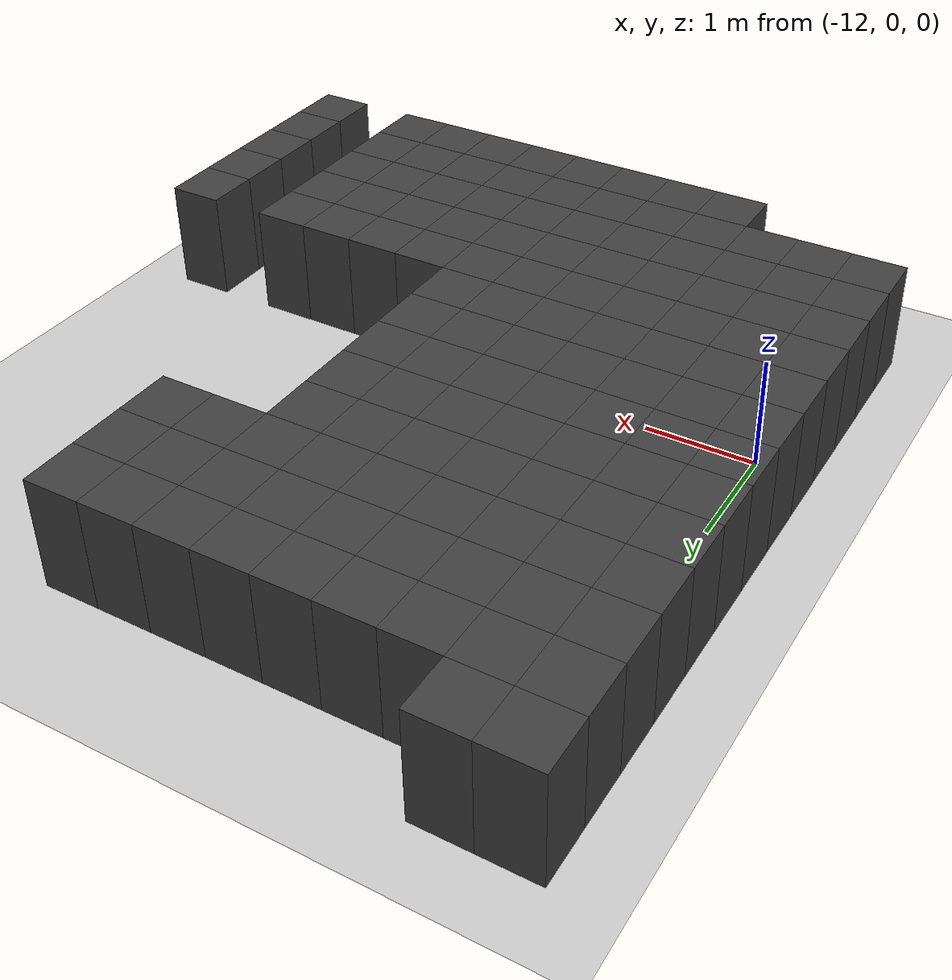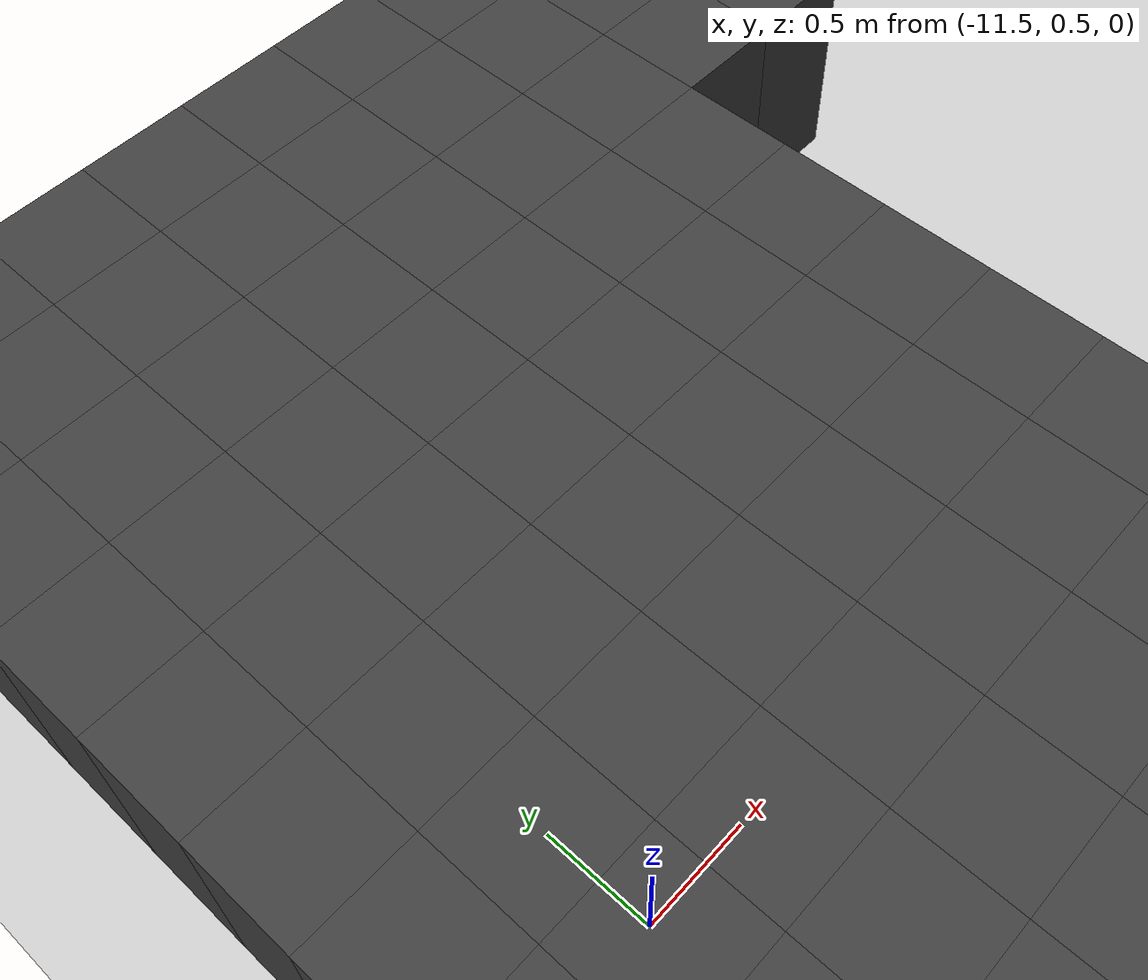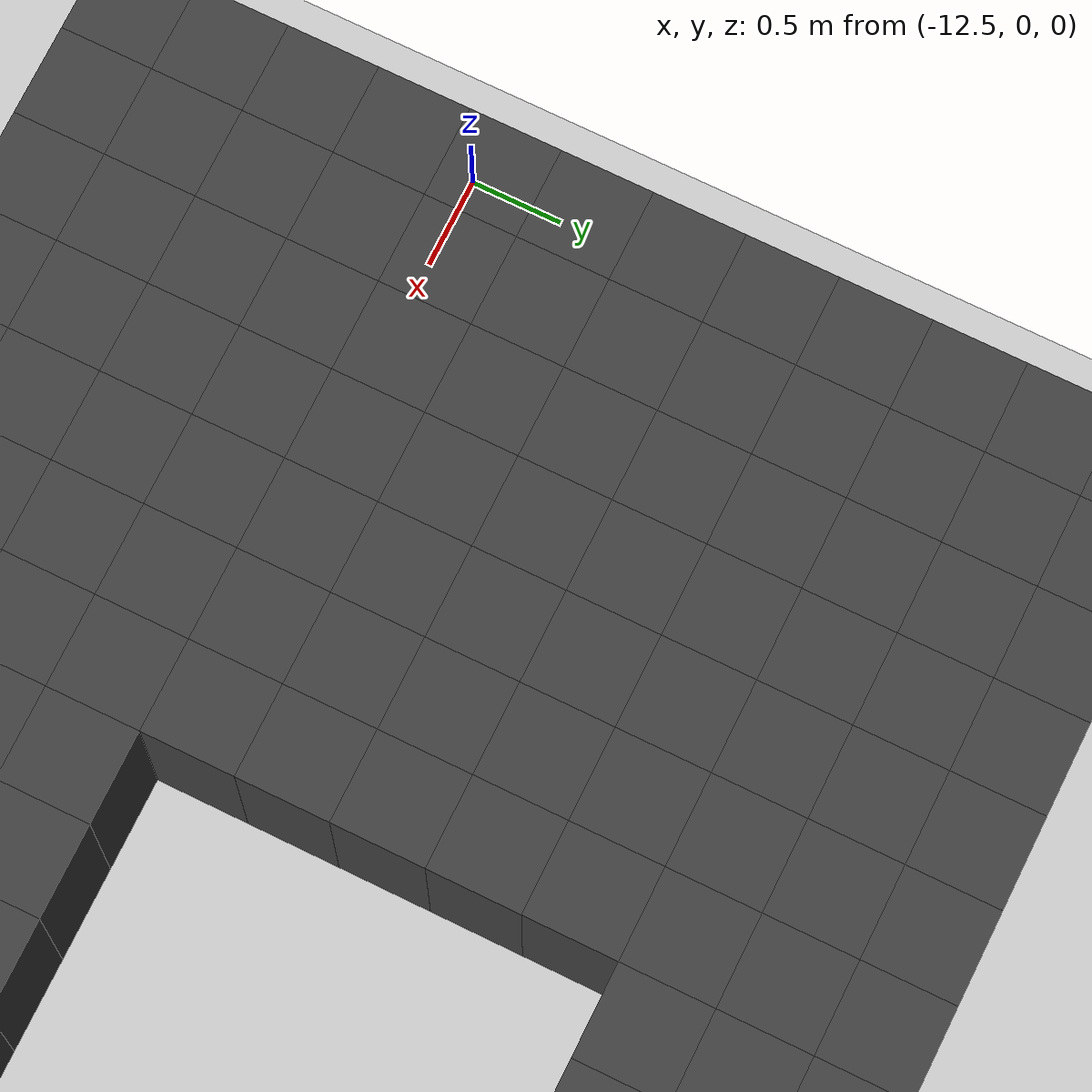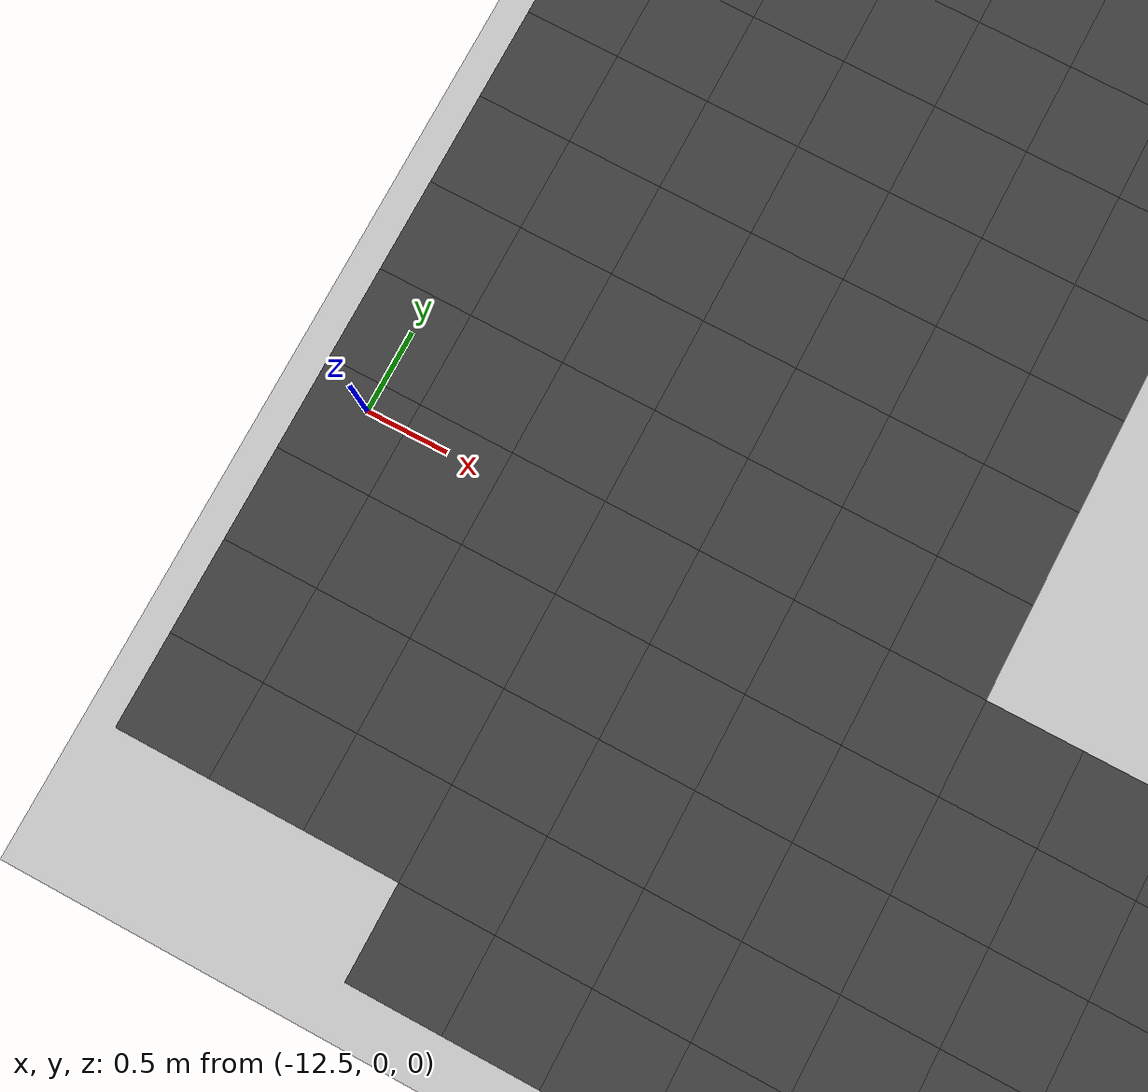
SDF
<sdf version="1.7">
 <world name="map_14706">
  <model name="ground_plane">
   <static>true</static>
   <link name="link">
    <collision name="collision">
     <geometry><plane><normal>0 0 1</normal><size>200 200</size></plane></geometry>
    </collision>
    <visual name="visual">
     <geometry><plane><normal>0 0 1</normal><size>200 200</size></plane></geometry>
     <material><ambient>0.8 0.8 0.8 1</ambient><diffuse>0.8 0.8 0.8 1</diffuse></material>
    </visual>
   </link>
  </model>
  <model name="maze_environment">
   <static>true</static>
   <link name="wall_499">
    <pose>-12.250 4.250 0.500 0 0 0</pose>
    <collision name="col"><geometry><box><size>0.5 0.5 1.0</size></box></geometry></collision>
    <visual name="vis">
     <geometry><box><size>0.5 0.5 1.0</size></box></geometry>
     <material><ambient>0.15 0.15 0.15 1</ambient><diffuse>0.25 0.25 0.25 1</diffuse></material>
    </visual>
   </link>
   <link name="wall_500">
    <pose>-11.750 4.250 0.500 0 0 0</pose>
    <collision name="col"><geometry><box><size>0.5 0.5 1.0</size></box></geometry></collision>
    <visual name="vis">
     <geometry><box><size>0.5 0.5 1.0</size></box></geometry>
     <material><ambient>0.15 0.15 0.15 1</ambient><diffuse>0.25 0.25 0.25 1</diffuse></material>
    </visual>
   </link>
   <link name="wall_538">
    <pose>-12.250 3.750 0.500 0 0 0</pose>
    <collision name="col"><geometry><box><size>0.5 0.5 1.0</size></box></geometry></collision>
    <visual name="vis">
     <geometry><box><size>0.5 0.5 1.0</size></box></geometry>
     <material><ambient>0.15 0.15 0.15 1</ambient><diffuse>0.25 0.25 0.25 1</diffuse></material>
    </visual>
   </link>
   <link name="wall_539">
    <pose>-11.750 3.750 0.500 0 0 0</pose>
    <collision name="col"><geometry><box><size>0.5 0.5 1.0</size></box></geometry></collision>
    <visual name="vis">
     <geometry><box><size>0.5 0.5 1.0</size></box></geometry>
     <material><ambient>0.15 0.15 0.15 1</ambient><diffuse>0.25 0.25 0.25 1</diffuse></material>
    </visual>
   </link>
   <link name="wall_540">
    <pose>-11.250 3.750 0.500 0 0 0</pose>
    <collision name="col"><geometry><box><size>0.5 0.5 1.0</size></box></geometry></collision>
    <visual name="vis">
     <geometry><box><size>0.5 0.5 1.0</size></box></geometry>
     <material><ambient>0.15 0.15 0.15 1</ambient><diffuse>0.25 0.25 0.25 1</diffuse></material>
    </visual>
   </link>
   <link name="wall_541">
    <pose>-10.750 3.750 0.500 0 0 0</pose>
    <collision name="col"><geometry><box><size>0.5 0.5 1.0</size></box></geometry></collision>
    <visual name="vis">
     <geometry><box><size>0.5 0.5 1.0</size></box></geometry>
     <material><ambient>0.15 0.15 0.15 1</ambient><diffuse>0.25 0.25 0.25 1</diffuse></material>
    </visual>
   </link>
   <link name="wall_542">
    <pose>-10.250 3.750 0.500 0 0 0</pose>
    <collision name="col"><geometry><box><size>0.5 0.5 1.0</size></box></geometry></collision>
    <visual name="vis">
     <geometry><box><size>0.5 0.5 1.0</size></box></geometry>
     <material><ambient>0.15 0.15 0.15 1</ambient><diffuse>0.25 0.25 0.25 1</diffuse></material>
    </visual>
   </link>
   <link name="wall_543">
    <pose>-9.750 3.750 0.500 0 0 0</pose>
    <collision name="col"><geometry><box><size>0.5 0.5 1.0</size></box></geometry></collision>
    <visual name="vis">
     <geometry><box><size>0.5 0.5 1.0</size></box></geometry>
     <material><ambient>0.15 0.15 0.15 1</ambient><diffuse>0.25 0.25 0.25 1</diffuse></material>
    </visual>
   </link>
   <link name="wall_544">
    <pose>-9.250 3.750 0.500 0 0 0</pose>
    <collision name="col"><geometry><box><size>0.5 0.5 1.0</size></box></geometry></collision>
    <visual name="vis">
     <geometry><box><size>0.5 0.5 1.0</size></box></geometry>
     <material><ambient>0.15 0.15 0.15 1</ambient><diffuse>0.25 0.25 0.25 1</diffuse></material>
    </visual>
   </link>
   <link name="wall_545">
    <pose>-8.750 3.750 0.500 0 0 0</pose>
    <collision name="col"><geometry><box><size>0.5 0.5 1.0</size></box></geometry></collision>
    <visual name="vis">
     <geometry><box><size>0.5 0.5 1.0</size></box></geometry>
     <material><ambient>0.15 0.15 0.15 1</ambient><diffuse>0.25 0.25 0.25 1</diffuse></material>
    </visual>
   </link>
   <link name="wall_546">
    <pose>-8.250 3.750 0.500 0 0 0</pose>
    <collision name="col"><geometry><box><size>0.5 0.5 1.0</size></box></geometry></collision>
    <visual name="vis">
     <geometry><box><size>0.5 0.5 1.0</size></box></geometry>
     <material><ambient>0.15 0.15 0.15 1</ambient><diffuse>0.25 0.25 0.25 1</diffuse></material>
    </visual>
   </link>
   <link name="wall_568">
    <pose>-12.250 3.250 0.500 0 0 0</pose>
    <collision name="col"><geometry><box><size>0.5 0.5 1.0</size></box></geometry></collision>
    <visual name="vis">
     <geometry><box><size>0.5 0.5 1.0</size></box></geometry>
     <material><ambient>0.15 0.15 0.15 1</ambient><diffuse>0.25 0.25 0.25 1</diffuse></material>
    </visual>
   </link>
   <link name="wall_569">
    <pose>-11.750 3.250 0.500 0 0 0</pose>
    <collision name="col"><geometry><box><size>0.5 0.5 1.0</size></box></geometry></collision>
    <visual name="vis">
     <geometry><box><size>0.5 0.5 1.0</size></box></geometry>
     <material><ambient>0.15 0.15 0.15 1</ambient><diffuse>0.25 0.25 0.25 1</diffuse></material>
    </visual>
   </link>
   <link name="wall_570">
    <pose>-11.250 3.250 0.500 0 0 0</pose>
    <collision name="col"><geometry><box><size>0.5 0.5 1.0</size></box></geometry></collision>
    <visual name="vis">
     <geometry><box><size>0.5 0.5 1.0</size></box></geometry>
     <material><ambient>0.15 0.15 0.15 1</ambient><diffuse>0.25 0.25 0.25 1</diffuse></material>
    </visual>
   </link>
   <link name="wall_571">
    <pose>-10.750 3.250 0.500 0 0 0</pose>
    <collision name="col"><geometry><box><size>0.5 0.5 1.0</size></box></geometry></collision>
    <visual name="vis">
     <geometry><box><size>0.5 0.5 1.0</size></box></geometry>
     <material><ambient>0.15 0.15 0.15 1</ambient><diffuse>0.25 0.25 0.25 1</diffuse></material>
    </visual>
   </link>
   <link name="wall_572">
    <pose>-10.250 3.250 0.500 0 0 0</pose>
    <collision name="col"><geometry><box><size>0.5 0.5 1.0</size></box></geometry></collision>
    <visual name="vis">
     <geometry><box><size>0.5 0.5 1.0</size></box></geometry>
     <material><ambient>0.15 0.15 0.15 1</ambient><diffuse>0.25 0.25 0.25 1</diffuse></material>
    </visual>
   </link>
   <link name="wall_573">
    <pose>-9.750 3.250 0.500 0 0 0</pose>
    <collision name="col"><geometry><box><size>0.5 0.5 1.0</size></box></geometry></collision>
    <visual name="vis">
     <geometry><box><size>0.5 0.5 1.0</size></box></geometry>
     <material><ambient>0.15 0.15 0.15 1</ambient><diffuse>0.25 0.25 0.25 1</diffuse></material>
    </visual>
   </link>
   <link name="wall_574">
    <pose>-9.250 3.250 0.500 0 0 0</pose>
    <collision name="col"><geometry><box><size>0.5 0.5 1.0</size></box></geometry></collision>
    <visual name="vis">
     <geometry><box><size>0.5 0.5 1.0</size></box></geometry>
     <material><ambient>0.15 0.15 0.15 1</ambient><diffuse>0.25 0.25 0.25 1</diffuse></material>
    </visual>
   </link>
   <link name="wall_575">
    <pose>-8.750 3.250 0.500 0 0 0</pose>
    <collision name="col"><geometry><box><size>0.5 0.5 1.0</size></box></geometry></collision>
    <visual name="vis">
     <geometry><box><size>0.5 0.5 1.0</size></box></geometry>
     <material><ambient>0.15 0.15 0.15 1</ambient><diffuse>0.25 0.25 0.25 1</diffuse></material>
    </visual>
   </link>
   <link name="wall_576">
    <pose>-8.250 3.250 0.500 0 0 0</pose>
    <collision name="col"><geometry><box><size>0.5 0.5 1.0</size></box></geometry></collision>
    <visual name="vis">
     <geometry><box><size>0.5 0.5 1.0</size></box></geometry>
     <material><ambient>0.15 0.15 0.15 1</ambient><diffuse>0.25 0.25 0.25 1</diffuse></material>
    </visual>
   </link>
   <link name="wall_600">
    <pose>-12.250 2.750 0.500 0 0 0</pose>
    <collision name="col"><geometry><box><size>0.5 0.5 1.0</size></box></geometry></collision>
    <visual name="vis">
     <geometry><box><size>0.5 0.5 1.0</size></box></geometry>
     <material><ambient>0.15 0.15 0.15 1</ambient><diffuse>0.25 0.25 0.25 1</diffuse></material>
    </visual>
   </link>
   <link name="wall_601">
    <pose>-11.750 2.750 0.500 0 0 0</pose>
    <collision name="col"><geometry><box><size>0.5 0.5 1.0</size></box></geometry></collision>
    <visual name="vis">
     <geometry><box><size>0.5 0.5 1.0</size></box></geometry>
     <material><ambient>0.15 0.15 0.15 1</ambient><diffuse>0.25 0.25 0.25 1</diffuse></material>
    </visual>
   </link>
   <link name="wall_602">
    <pose>-11.250 2.750 0.500 0 0 0</pose>
    <collision name="col"><geometry><box><size>0.5 0.5 1.0</size></box></geometry></collision>
    <visual name="vis">
     <geometry><box><size>0.5 0.5 1.0</size></box></geometry>
     <material><ambient>0.15 0.15 0.15 1</ambient><diffuse>0.25 0.25 0.25 1</diffuse></material>
    </visual>
   </link>
   <link name="wall_603">
    <pose>-10.750 2.750 0.500 0 0 0</pose>
    <collision name="col"><geometry><box><size>0.5 0.5 1.0</size></box></geometry></collision>
    <visual name="vis">
     <geometry><box><size>0.5 0.5 1.0</size></box></geometry>
     <material><ambient>0.15 0.15 0.15 1</ambient><diffuse>0.25 0.25 0.25 1</diffuse></material>
    </visual>
   </link>
   <link name="wall_604">
    <pose>-10.250 2.750 0.500 0 0 0</pose>
    <collision name="col"><geometry><box><size>0.5 0.5 1.0</size></box></geometry></collision>
    <visual name="vis">
     <geometry><box><size>0.5 0.5 1.0</size></box></geometry>
     <material><ambient>0.15 0.15 0.15 1</ambient><diffuse>0.25 0.25 0.25 1</diffuse></material>
    </visual>
   </link>
   <link name="wall_605">
    <pose>-9.750 2.750 0.500 0 0 0</pose>
    <collision name="col"><geometry><box><size>0.5 0.5 1.0</size></box></geometry></collision>
    <visual name="vis">
     <geometry><box><size>0.5 0.5 1.0</size></box></geometry>
     <material><ambient>0.15 0.15 0.15 1</ambient><diffuse>0.25 0.25 0.25 1</diffuse></material>
    </visual>
   </link>
   <link name="wall_606">
    <pose>-9.250 2.750 0.500 0 0 0</pose>
    <collision name="col"><geometry><box><size>0.5 0.5 1.0</size></box></geometry></collision>
    <visual name="vis">
     <geometry><box><size>0.5 0.5 1.0</size></box></geometry>
     <material><ambient>0.15 0.15 0.15 1</ambient><diffuse>0.25 0.25 0.25 1</diffuse></material>
    </visual>
   </link>
   <link name="wall_607">
    <pose>-8.750 2.750 0.500 0 0 0</pose>
    <collision name="col"><geometry><box><size>0.5 0.5 1.0</size></box></geometry></collision>
    <visual name="vis">
     <geometry><box><size>0.5 0.5 1.0</size></box></geometry>
     <material><ambient>0.15 0.15 0.15 1</ambient><diffuse>0.25 0.25 0.25 1</diffuse></material>
    </visual>
   </link>
   <link name="wall_608">
    <pose>-8.250 2.750 0.500 0 0 0</pose>
    <collision name="col"><geometry><box><size>0.5 0.5 1.0</size></box></geometry></collision>
    <visual name="vis">
     <geometry><box><size>0.5 0.5 1.0</size></box></geometry>
     <material><ambient>0.15 0.15 0.15 1</ambient><diffuse>0.25 0.25 0.25 1</diffuse></material>
    </visual>
   </link>
   <link name="wall_631">
    <pose>-12.250 2.250 0.500 0 0 0</pose>
    <collision name="col"><geometry><box><size>0.5 0.5 1.0</size></box></geometry></collision>
    <visual name="vis">
     <geometry><box><size>0.5 0.5 1.0</size></box></geometry>
     <material><ambient>0.15 0.15 0.15 1</ambient><diffuse>0.25 0.25 0.25 1</diffuse></material>
    </visual>
   </link>
   <link name="wall_632">
    <pose>-11.750 2.250 0.500 0 0 0</pose>
    <collision name="col"><geometry><box><size>0.5 0.5 1.0</size></box></geometry></collision>
    <visual name="vis">
     <geometry><box><size>0.5 0.5 1.0</size></box></geometry>
     <material><ambient>0.15 0.15 0.15 1</ambient><diffuse>0.25 0.25 0.25 1</diffuse></material>
    </visual>
   </link>
   <link name="wall_633">
    <pose>-11.250 2.250 0.500 0 0 0</pose>
    <collision name="col"><geometry><box><size>0.5 0.5 1.0</size></box></geometry></collision>
    <visual name="vis">
     <geometry><box><size>0.5 0.5 1.0</size></box></geometry>
     <material><ambient>0.15 0.15 0.15 1</ambient><diffuse>0.25 0.25 0.25 1</diffuse></material>
    </visual>
   </link>
   <link name="wall_634">
    <pose>-10.750 2.250 0.500 0 0 0</pose>
    <collision name="col"><geometry><box><size>0.5 0.5 1.0</size></box></geometry></collision>
    <visual name="vis">
     <geometry><box><size>0.5 0.5 1.0</size></box></geometry>
     <material><ambient>0.15 0.15 0.15 1</ambient><diffuse>0.25 0.25 0.25 1</diffuse></material>
    </visual>
   </link>
   <link name="wall_635">
    <pose>-10.250 2.250 0.500 0 0 0</pose>
    <collision name="col"><geometry><box><size>0.5 0.5 1.0</size></box></geometry></collision>
    <visual name="vis">
     <geometry><box><size>0.5 0.5 1.0</size></box></geometry>
     <material><ambient>0.15 0.15 0.15 1</ambient><diffuse>0.25 0.25 0.25 1</diffuse></material>
    </visual>
   </link>
   <link name="wall_636">
    <pose>-9.750 2.250 0.500 0 0 0</pose>
    <collision name="col"><geometry><box><size>0.5 0.5 1.0</size></box></geometry></collision>
    <visual name="vis">
     <geometry><box><size>0.5 0.5 1.0</size></box></geometry>
     <material><ambient>0.15 0.15 0.15 1</ambient><diffuse>0.25 0.25 0.25 1</diffuse></material>
    </visual>
   </link>
   <link name="wall_637">
    <pose>-9.250 2.250 0.500 0 0 0</pose>
    <collision name="col"><geometry><box><size>0.5 0.5 1.0</size></box></geometry></collision>
    <visual name="vis">
     <geometry><box><size>0.5 0.5 1.0</size></box></geometry>
     <material><ambient>0.15 0.15 0.15 1</ambient><diffuse>0.25 0.25 0.25 1</diffuse></material>
    </visual>
   </link>
   <link name="wall_662">
    <pose>-12.250 1.750 0.500 0 0 0</pose>
    <collision name="col"><geometry><box><size>0.5 0.5 1.0</size></box></geometry></collision>
    <visual name="vis">
     <geometry><box><size>0.5 0.5 1.0</size></box></geometry>
     <material><ambient>0.15 0.15 0.15 1</ambient><diffuse>0.25 0.25 0.25 1</diffuse></material>
    </visual>
   </link>
   <link name="wall_663">
    <pose>-11.750 1.750 0.500 0 0 0</pose>
    <collision name="col"><geometry><box><size>0.5 0.5 1.0</size></box></geometry></collision>
    <visual name="vis">
     <geometry><box><size>0.5 0.5 1.0</size></box></geometry>
     <material><ambient>0.15 0.15 0.15 1</ambient><diffuse>0.25 0.25 0.25 1</diffuse></material>
    </visual>
   </link>
   <link name="wall_664">
    <pose>-11.250 1.750 0.500 0 0 0</pose>
    <collision name="col"><geometry><box><size>0.5 0.5 1.0</size></box></geometry></collision>
    <visual name="vis">
     <geometry><box><size>0.5 0.5 1.0</size></box></geometry>
     <material><ambient>0.15 0.15 0.15 1</ambient><diffuse>0.25 0.25 0.25 1</diffuse></material>
    </visual>
   </link>
   <link name="wall_665">
    <pose>-10.750 1.750 0.500 0 0 0</pose>
    <collision name="col"><geometry><box><size>0.5 0.5 1.0</size></box></geometry></collision>
    <visual name="vis">
     <geometry><box><size>0.5 0.5 1.0</size></box></geometry>
     <material><ambient>0.15 0.15 0.15 1</ambient><diffuse>0.25 0.25 0.25 1</diffuse></material>
    </visual>
   </link>
   <link name="wall_666">
    <pose>-10.250 1.750 0.500 0 0 0</pose>
    <collision name="col"><geometry><box><size>0.5 0.5 1.0</size></box></geometry></collision>
    <visual name="vis">
     <geometry><box><size>0.5 0.5 1.0</size></box></geometry>
     <material><ambient>0.15 0.15 0.15 1</ambient><diffuse>0.25 0.25 0.25 1</diffuse></material>
    </visual>
   </link>
   <link name="wall_667">
    <pose>-9.750 1.750 0.500 0 0 0</pose>
    <collision name="col"><geometry><box><size>0.5 0.5 1.0</size></box></geometry></collision>
    <visual name="vis">
     <geometry><box><size>0.5 0.5 1.0</size></box></geometry>
     <material><ambient>0.15 0.15 0.15 1</ambient><diffuse>0.25 0.25 0.25 1</diffuse></material>
    </visual>
   </link>
   <link name="wall_668">
    <pose>-9.250 1.750 0.500 0 0 0</pose>
    <collision name="col"><geometry><box><size>0.5 0.5 1.0</size></box></geometry></collision>
    <visual name="vis">
     <geometry><box><size>0.5 0.5 1.0</size></box></geometry>
     <material><ambient>0.15 0.15 0.15 1</ambient><diffuse>0.25 0.25 0.25 1</diffuse></material>
    </visual>
   </link>
   <link name="wall_698">
    <pose>-12.250 1.250 0.500 0 0 0</pose>
    <collision name="col"><geometry><box><size>0.5 0.5 1.0</size></box></geometry></collision>
    <visual name="vis">
     <geometry><box><size>0.5 0.5 1.0</size></box></geometry>
     <material><ambient>0.15 0.15 0.15 1</ambient><diffuse>0.25 0.25 0.25 1</diffuse></material>
    </visual>
   </link>
   <link name="wall_699">
    <pose>-11.750 1.250 0.500 0 0 0</pose>
    <collision name="col"><geometry><box><size>0.5 0.5 1.0</size></box></geometry></collision>
    <visual name="vis">
     <geometry><box><size>0.5 0.5 1.0</size></box></geometry>
     <material><ambient>0.15 0.15 0.15 1</ambient><diffuse>0.25 0.25 0.25 1</diffuse></material>
    </visual>
   </link>
   <link name="wall_700">
    <pose>-11.250 1.250 0.500 0 0 0</pose>
    <collision name="col"><geometry><box><size>0.5 0.5 1.0</size></box></geometry></collision>
    <visual name="vis">
     <geometry><box><size>0.5 0.5 1.0</size></box></geometry>
     <material><ambient>0.15 0.15 0.15 1</ambient><diffuse>0.25 0.25 0.25 1</diffuse></material>
    </visual>
   </link>
   <link name="wall_701">
    <pose>-10.750 1.250 0.500 0 0 0</pose>
    <collision name="col"><geometry><box><size>0.5 0.5 1.0</size></box></geometry></collision>
    <visual name="vis">
     <geometry><box><size>0.5 0.5 1.0</size></box></geometry>
     <material><ambient>0.15 0.15 0.15 1</ambient><diffuse>0.25 0.25 0.25 1</diffuse></material>
    </visual>
   </link>
   <link name="wall_702">
    <pose>-10.250 1.250 0.500 0 0 0</pose>
    <collision name="col"><geometry><box><size>0.5 0.5 1.0</size></box></geometry></collision>
    <visual name="vis">
     <geometry><box><size>0.5 0.5 1.0</size></box></geometry>
     <material><ambient>0.15 0.15 0.15 1</ambient><diffuse>0.25 0.25 0.25 1</diffuse></material>
    </visual>
   </link>
   <link name="wall_703">
    <pose>-9.750 1.250 0.500 0 0 0</pose>
    <collision name="col"><geometry><box><size>0.5 0.5 1.0</size></box></geometry></collision>
    <visual name="vis">
     <geometry><box><size>0.5 0.5 1.0</size></box></geometry>
     <material><ambient>0.15 0.15 0.15 1</ambient><diffuse>0.25 0.25 0.25 1</diffuse></material>
    </visual>
   </link>
   <link name="wall_704">
    <pose>-9.250 1.250 0.500 0 0 0</pose>
    <collision name="col"><geometry><box><size>0.5 0.5 1.0</size></box></geometry></collision>
    <visual name="vis">
     <geometry><box><size>0.5 0.5 1.0</size></box></geometry>
     <material><ambient>0.15 0.15 0.15 1</ambient><diffuse>0.25 0.25 0.25 1</diffuse></material>
    </visual>
   </link>
   <link name="wall_739">
    <pose>-12.250 0.750 0.500 0 0 0</pose>
    <collision name="col"><geometry><box><size>0.5 0.5 1.0</size></box></geometry></collision>
    <visual name="vis">
     <geometry><box><size>0.5 0.5 1.0</size></box></geometry>
     <material><ambient>0.15 0.15 0.15 1</ambient><diffuse>0.25 0.25 0.25 1</diffuse></material>
    </visual>
   </link>
   <link name="wall_740">
    <pose>-11.750 0.750 0.500 0 0 0</pose>
    <collision name="col"><geometry><box><size>0.5 0.5 1.0</size></box></geometry></collision>
    <visual name="vis">
     <geometry><box><size>0.5 0.5 1.0</size></box></geometry>
     <material><ambient>0.15 0.15 0.15 1</ambient><diffuse>0.25 0.25 0.25 1</diffuse></material>
    </visual>
   </link>
   <link name="wall_741">
    <pose>-11.250 0.750 0.500 0 0 0</pose>
    <collision name="col"><geometry><box><size>0.5 0.5 1.0</size></box></geometry></collision>
    <visual name="vis">
     <geometry><box><size>0.5 0.5 1.0</size></box></geometry>
     <material><ambient>0.15 0.15 0.15 1</ambient><diffuse>0.25 0.25 0.25 1</diffuse></material>
    </visual>
   </link>
   <link name="wall_742">
    <pose>-10.750 0.750 0.500 0 0 0</pose>
    <collision name="col"><geometry><box><size>0.5 0.5 1.0</size></box></geometry></collision>
    <visual name="vis">
     <geometry><box><size>0.5 0.5 1.0</size></box></geometry>
     <material><ambient>0.15 0.15 0.15 1</ambient><diffuse>0.25 0.25 0.25 1</diffuse></material>
    </visual>
   </link>
   <link name="wall_743">
    <pose>-10.250 0.750 0.500 0 0 0</pose>
    <collision name="col"><geometry><box><size>0.5 0.5 1.0</size></box></geometry></collision>
    <visual name="vis">
     <geometry><box><size>0.5 0.5 1.0</size></box></geometry>
     <material><ambient>0.15 0.15 0.15 1</ambient><diffuse>0.25 0.25 0.25 1</diffuse></material>
    </visual>
   </link>
   <link name="wall_744">
    <pose>-9.750 0.750 0.500 0 0 0</pose>
    <collision name="col"><geometry><box><size>0.5 0.5 1.0</size></box></geometry></collision>
    <visual name="vis">
     <geometry><box><size>0.5 0.5 1.0</size></box></geometry>
     <material><ambient>0.15 0.15 0.15 1</ambient><diffuse>0.25 0.25 0.25 1</diffuse></material>
    </visual>
   </link>
   <link name="wall_745">
    <pose>-9.250 0.750 0.500 0 0 0</pose>
    <collision name="col"><geometry><box><size>0.5 0.5 1.0</size></box></geometry></collision>
    <visual name="vis">
     <geometry><box><size>0.5 0.5 1.0</size></box></geometry>
     <material><ambient>0.15 0.15 0.15 1</ambient><diffuse>0.25 0.25 0.25 1</diffuse></material>
    </visual>
   </link>
   <link name="wall_780">
    <pose>-12.250 0.250 0.500 0 0 0</pose>
    <collision name="col"><geometry><box><size>0.5 0.5 1.0</size></box></geometry></collision>
    <visual name="vis">
     <geometry><box><size>0.5 0.5 1.0</size></box></geometry>
     <material><ambient>0.15 0.15 0.15 1</ambient><diffuse>0.25 0.25 0.25 1</diffuse></material>
    </visual>
   </link>
   <link name="wall_781">
    <pose>-11.750 0.250 0.500 0 0 0</pose>
    <collision name="col"><geometry><box><size>0.5 0.5 1.0</size></box></geometry></collision>
    <visual name="vis">
     <geometry><box><size>0.5 0.5 1.0</size></box></geometry>
     <material><ambient>0.15 0.15 0.15 1</ambient><diffuse>0.25 0.25 0.25 1</diffuse></material>
    </visual>
   </link>
   <link name="wall_782">
    <pose>-11.250 0.250 0.500 0 0 0</pose>
    <collision name="col"><geometry><box><size>0.5 0.5 1.0</size></box></geometry></collision>
    <visual name="vis">
     <geometry><box><size>0.5 0.5 1.0</size></box></geometry>
     <material><ambient>0.15 0.15 0.15 1</ambient><diffuse>0.25 0.25 0.25 1</diffuse></material>
    </visual>
   </link>
   <link name="wall_783">
    <pose>-10.750 0.250 0.500 0 0 0</pose>
    <collision name="col"><geometry><box><size>0.5 0.5 1.0</size></box></geometry></collision>
    <visual name="vis">
     <geometry><box><size>0.5 0.5 1.0</size></box></geometry>
     <material><ambient>0.15 0.15 0.15 1</ambient><diffuse>0.25 0.25 0.25 1</diffuse></material>
    </visual>
   </link>
   <link name="wall_784">
    <pose>-10.250 0.250 0.500 0 0 0</pose>
    <collision name="col"><geometry><box><size>0.5 0.5 1.0</size></box></geometry></collision>
    <visual name="vis">
     <geometry><box><size>0.5 0.5 1.0</size></box></geometry>
     <material><ambient>0.15 0.15 0.15 1</ambient><diffuse>0.25 0.25 0.25 1</diffuse></material>
    </visual>
   </link>
   <link name="wall_785">
    <pose>-9.750 0.250 0.500 0 0 0</pose>
    <collision name="col"><geometry><box><size>0.5 0.5 1.0</size></box></geometry></collision>
    <visual name="vis">
     <geometry><box><size>0.5 0.5 1.0</size></box></geometry>
     <material><ambient>0.15 0.15 0.15 1</ambient><diffuse>0.25 0.25 0.25 1</diffuse></material>
    </visual>
   </link>
   <link name="wall_786">
    <pose>-9.250 0.250 0.500 0 0 0</pose>
    <collision name="col"><geometry><box><size>0.5 0.5 1.0</size></box></geometry></collision>
    <visual name="vis">
     <geometry><box><size>0.5 0.5 1.0</size></box></geometry>
     <material><ambient>0.15 0.15 0.15 1</ambient><diffuse>0.25 0.25 0.25 1</diffuse></material>
    </visual>
   </link>
   <link name="wall_815">
    <pose>-12.250 -0.250 0.500 0 0 0</pose>
    <collision name="col"><geometry><box><size>0.5 0.5 1.0</size></box></geometry></collision>
    <visual name="vis">
     <geometry><box><size>0.5 0.5 1.0</size></box></geometry>
     <material><ambient>0.15 0.15 0.15 1</ambient><diffuse>0.25 0.25 0.25 1</diffuse></material>
    </visual>
   </link>
   <link name="wall_816">
    <pose>-11.750 -0.250 0.500 0 0 0</pose>
    <collision name="col"><geometry><box><size>0.5 0.5 1.0</size></box></geometry></collision>
    <visual name="vis">
     <geometry><box><size>0.5 0.5 1.0</size></box></geometry>
     <material><ambient>0.15 0.15 0.15 1</ambient><diffuse>0.25 0.25 0.25 1</diffuse></material>
    </visual>
   </link>
   <link name="wall_817">
    <pose>-11.250 -0.250 0.500 0 0 0</pose>
    <collision name="col"><geometry><box><size>0.5 0.5 1.0</size></box></geometry></collision>
    <visual name="vis">
     <geometry><box><size>0.5 0.5 1.0</size></box></geometry>
     <material><ambient>0.15 0.15 0.15 1</ambient><diffuse>0.25 0.25 0.25 1</diffuse></material>
    </visual>
   </link>
   <link name="wall_818">
    <pose>-10.750 -0.250 0.500 0 0 0</pose>
    <collision name="col"><geometry><box><size>0.5 0.5 1.0</size></box></geometry></collision>
    <visual name="vis">
     <geometry><box><size>0.5 0.5 1.0</size></box></geometry>
     <material><ambient>0.15 0.15 0.15 1</ambient><diffuse>0.25 0.25 0.25 1</diffuse></material>
    </visual>
   </link>
   <link name="wall_819">
    <pose>-10.250 -0.250 0.500 0 0 0</pose>
    <collision name="col"><geometry><box><size>0.5 0.5 1.0</size></box></geometry></collision>
    <visual name="vis">
     <geometry><box><size>0.5 0.5 1.0</size></box></geometry>
     <material><ambient>0.15 0.15 0.15 1</ambient><diffuse>0.25 0.25 0.25 1</diffuse></material>
    </visual>
   </link>
   <link name="wall_820">
    <pose>-9.750 -0.250 0.500 0 0 0</pose>
    <collision name="col"><geometry><box><size>0.5 0.5 1.0</size></box></geometry></collision>
    <visual name="vis">
     <geometry><box><size>0.5 0.5 1.0</size></box></geometry>
     <material><ambient>0.15 0.15 0.15 1</ambient><diffuse>0.25 0.25 0.25 1</diffuse></material>
    </visual>
   </link>
   <link name="wall_821">
    <pose>-9.250 -0.250 0.500 0 0 0</pose>
    <collision name="col"><geometry><box><size>0.5 0.5 1.0</size></box></geometry></collision>
    <visual name="vis">
     <geometry><box><size>0.5 0.5 1.0</size></box></geometry>
     <material><ambient>0.15 0.15 0.15 1</ambient><diffuse>0.25 0.25 0.25 1</diffuse></material>
    </visual>
   </link>
   <link name="wall_822">
    <pose>-8.750 -0.250 0.500 0 0 0</pose>
    <collision name="col"><geometry><box><size>0.5 0.5 1.0</size></box></geometry></collision>
    <visual name="vis">
     <geometry><box><size>0.5 0.5 1.0</size></box></geometry>
     <material><ambient>0.15 0.15 0.15 1</ambient><diffuse>0.25 0.25 0.25 1</diffuse></material>
    </visual>
   </link>
   <link name="wall_823">
    <pose>-8.250 -0.250 0.500 0 0 0</pose>
    <collision name="col"><geometry><box><size>0.5 0.5 1.0</size></box></geometry></collision>
    <visual name="vis">
     <geometry><box><size>0.5 0.5 1.0</size></box></geometry>
     <material><ambient>0.15 0.15 0.15 1</ambient><diffuse>0.25 0.25 0.25 1</diffuse></material>
    </visual>
   </link>
   <link name="wall_824">
    <pose>-7.750 -0.250 0.500 0 0 0</pose>
    <collision name="col"><geometry><box><size>0.5 0.5 1.0</size></box></geometry></collision>
    <visual name="vis">
     <geometry><box><size>0.5 0.5 1.0</size></box></geometry>
     <material><ambient>0.15 0.15 0.15 1</ambient><diffuse>0.25 0.25 0.25 1</diffuse></material>
    </visual>
   </link>
   <link name="wall_825">
    <pose>-7.250 -0.250 0.500 0 0 0</pose>
    <collision name="col"><geometry><box><size>0.5 0.5 1.0</size></box></geometry></collision>
    <visual name="vis">
     <geometry><box><size>0.5 0.5 1.0</size></box></geometry>
     <material><ambient>0.15 0.15 0.15 1</ambient><diffuse>0.25 0.25 0.25 1</diffuse></material>
    </visual>
   </link>
   <link name="wall_826">
    <pose>-6.250 -0.250 0.500 0 0 0</pose>
    <collision name="col"><geometry><box><size>0.5 0.5 1.0</size></box></geometry></collision>
    <visual name="vis">
     <geometry><box><size>0.5 0.5 1.0</size></box></geometry>
     <material><ambient>0.15 0.15 0.15 1</ambient><diffuse>0.25 0.25 0.25 1</diffuse></material>
    </visual>
   </link>
   <link name="wall_857">
    <pose>-12.250 -0.750 0.500 0 0 0</pose>
    <collision name="col"><geometry><box><size>0.5 0.5 1.0</size></box></geometry></collision>
    <visual name="vis">
     <geometry><box><size>0.5 0.5 1.0</size></box></geometry>
     <material><ambient>0.15 0.15 0.15 1</ambient><diffuse>0.25 0.25 0.25 1</diffuse></material>
    </visual>
   </link>
   <link name="wall_858">
    <pose>-11.750 -0.750 0.500 0 0 0</pose>
    <collision name="col"><geometry><box><size>0.5 0.5 1.0</size></box></geometry></collision>
    <visual name="vis">
     <geometry><box><size>0.5 0.5 1.0</size></box></geometry>
     <material><ambient>0.15 0.15 0.15 1</ambient><diffuse>0.25 0.25 0.25 1</diffuse></material>
    </visual>
   </link>
   <link name="wall_859">
    <pose>-11.250 -0.750 0.500 0 0 0</pose>
    <collision name="col"><geometry><box><size>0.5 0.5 1.0</size></box></geometry></collision>
    <visual name="vis">
     <geometry><box><size>0.5 0.5 1.0</size></box></geometry>
     <material><ambient>0.15 0.15 0.15 1</ambient><diffuse>0.25 0.25 0.25 1</diffuse></material>
    </visual>
   </link>
   <link name="wall_860">
    <pose>-10.750 -0.750 0.500 0 0 0</pose>
    <collision name="col"><geometry><box><size>0.5 0.5 1.0</size></box></geometry></collision>
    <visual name="vis">
     <geometry><box><size>0.5 0.5 1.0</size></box></geometry>
     <material><ambient>0.15 0.15 0.15 1</ambient><diffuse>0.25 0.25 0.25 1</diffuse></material>
    </visual>
   </link>
   <link name="wall_861">
    <pose>-10.250 -0.750 0.500 0 0 0</pose>
    <collision name="col"><geometry><box><size>0.5 0.5 1.0</size></box></geometry></collision>
    <visual name="vis">
     <geometry><box><size>0.5 0.5 1.0</size></box></geometry>
     <material><ambient>0.15 0.15 0.15 1</ambient><diffuse>0.25 0.25 0.25 1</diffuse></material>
    </visual>
   </link>
   <link name="wall_862">
    <pose>-9.750 -0.750 0.500 0 0 0</pose>
    <collision name="col"><geometry><box><size>0.5 0.5 1.0</size></box></geometry></collision>
    <visual name="vis">
     <geometry><box><size>0.5 0.5 1.0</size></box></geometry>
     <material><ambient>0.15 0.15 0.15 1</ambient><diffuse>0.25 0.25 0.25 1</diffuse></material>
    </visual>
   </link>
   <link name="wall_863">
    <pose>-9.250 -0.750 0.500 0 0 0</pose>
    <collision name="col"><geometry><box><size>0.5 0.5 1.0</size></box></geometry></collision>
    <visual name="vis">
     <geometry><box><size>0.5 0.5 1.0</size></box></geometry>
     <material><ambient>0.15 0.15 0.15 1</ambient><diffuse>0.25 0.25 0.25 1</diffuse></material>
    </visual>
   </link>
   <link name="wall_864">
    <pose>-8.750 -0.750 0.500 0 0 0</pose>
    <collision name="col"><geometry><box><size>0.5 0.5 1.0</size></box></geometry></collision>
    <visual name="vis">
     <geometry><box><size>0.5 0.5 1.0</size></box></geometry>
     <material><ambient>0.15 0.15 0.15 1</ambient><diffuse>0.25 0.25 0.25 1</diffuse></material>
    </visual>
   </link>
   <link name="wall_865">
    <pose>-8.250 -0.750 0.500 0 0 0</pose>
    <collision name="col"><geometry><box><size>0.5 0.5 1.0</size></box></geometry></collision>
    <visual name="vis">
     <geometry><box><size>0.5 0.5 1.0</size></box></geometry>
     <material><ambient>0.15 0.15 0.15 1</ambient><diffuse>0.25 0.25 0.25 1</diffuse></material>
    </visual>
   </link>
   <link name="wall_866">
    <pose>-7.750 -0.750 0.500 0 0 0</pose>
    <collision name="col"><geometry><box><size>0.5 0.5 1.0</size></box></geometry></collision>
    <visual name="vis">
     <geometry><box><size>0.5 0.5 1.0</size></box></geometry>
     <material><ambient>0.15 0.15 0.15 1</ambient><diffuse>0.25 0.25 0.25 1</diffuse></material>
    </visual>
   </link>
   <link name="wall_867">
    <pose>-7.250 -0.750 0.500 0 0 0</pose>
    <collision name="col"><geometry><box><size>0.5 0.5 1.0</size></box></geometry></collision>
    <visual name="vis">
     <geometry><box><size>0.5 0.5 1.0</size></box></geometry>
     <material><ambient>0.15 0.15 0.15 1</ambient><diffuse>0.25 0.25 0.25 1</diffuse></material>
    </visual>
   </link>
   <link name="wall_868">
    <pose>-6.250 -0.750 0.500 0 0 0</pose>
    <collision name="col"><geometry><box><size>0.5 0.5 1.0</size></box></geometry></collision>
    <visual name="vis">
     <geometry><box><size>0.5 0.5 1.0</size></box></geometry>
     <material><ambient>0.15 0.15 0.15 1</ambient><diffuse>0.25 0.25 0.25 1</diffuse></material>
    </visual>
   </link>
   <link name="wall_899">
    <pose>-12.250 -1.250 0.500 0 0 0</pose>
    <collision name="col"><geometry><box><size>0.5 0.5 1.0</size></box></geometry></collision>
    <visual name="vis">
     <geometry><box><size>0.5 0.5 1.0</size></box></geometry>
     <material><ambient>0.15 0.15 0.15 1</ambient><diffuse>0.25 0.25 0.25 1</diffuse></material>
    </visual>
   </link>
   <link name="wall_900">
    <pose>-11.750 -1.250 0.500 0 0 0</pose>
    <collision name="col"><geometry><box><size>0.5 0.5 1.0</size></box></geometry></collision>
    <visual name="vis">
     <geometry><box><size>0.5 0.5 1.0</size></box></geometry>
     <material><ambient>0.15 0.15 0.15 1</ambient><diffuse>0.25 0.25 0.25 1</diffuse></material>
    </visual>
   </link>
   <link name="wall_901">
    <pose>-11.250 -1.250 0.500 0 0 0</pose>
    <collision name="col"><geometry><box><size>0.5 0.5 1.0</size></box></geometry></collision>
    <visual name="vis">
     <geometry><box><size>0.5 0.5 1.0</size></box></geometry>
     <material><ambient>0.15 0.15 0.15 1</ambient><diffuse>0.25 0.25 0.25 1</diffuse></material>
    </visual>
   </link>
   <link name="wall_902">
    <pose>-10.750 -1.250 0.500 0 0 0</pose>
    <collision name="col"><geometry><box><size>0.5 0.5 1.0</size></box></geometry></collision>
    <visual name="vis">
     <geometry><box><size>0.5 0.5 1.0</size></box></geometry>
     <material><ambient>0.15 0.15 0.15 1</ambient><diffuse>0.25 0.25 0.25 1</diffuse></material>
    </visual>
   </link>
   <link name="wall_903">
    <pose>-10.250 -1.250 0.500 0 0 0</pose>
    <collision name="col"><geometry><box><size>0.5 0.5 1.0</size></box></geometry></collision>
    <visual name="vis">
     <geometry><box><size>0.5 0.5 1.0</size></box></geometry>
     <material><ambient>0.15 0.15 0.15 1</ambient><diffuse>0.25 0.25 0.25 1</diffuse></material>
    </visual>
   </link>
   <link name="wall_904">
    <pose>-9.750 -1.250 0.500 0 0 0</pose>
    <collision name="col"><geometry><box><size>0.5 0.5 1.0</size></box></geometry></collision>
    <visual name="vis">
     <geometry><box><size>0.5 0.5 1.0</size></box></geometry>
     <material><ambient>0.15 0.15 0.15 1</ambient><diffuse>0.25 0.25 0.25 1</diffuse></material>
    </visual>
   </link>
   <link name="wall_905">
    <pose>-9.250 -1.250 0.500 0 0 0</pose>
    <collision name="col"><geometry><box><size>0.5 0.5 1.0</size></box></geometry></collision>
    <visual name="vis">
     <geometry><box><size>0.5 0.5 1.0</size></box></geometry>
     <material><ambient>0.15 0.15 0.15 1</ambient><diffuse>0.25 0.25 0.25 1</diffuse></material>
    </visual>
   </link>
   <link name="wall_906">
    <pose>-8.750 -1.250 0.500 0 0 0</pose>
    <collision name="col"><geometry><box><size>0.5 0.5 1.0</size></box></geometry></collision>
    <visual name="vis">
     <geometry><box><size>0.5 0.5 1.0</size></box></geometry>
     <material><ambient>0.15 0.15 0.15 1</ambient><diffuse>0.25 0.25 0.25 1</diffuse></material>
    </visual>
   </link>
   <link name="wall_907">
    <pose>-8.250 -1.250 0.500 0 0 0</pose>
    <collision name="col"><geometry><box><size>0.5 0.5 1.0</size></box></geometry></collision>
    <visual name="vis">
     <geometry><box><size>0.5 0.5 1.0</size></box></geometry>
     <material><ambient>0.15 0.15 0.15 1</ambient><diffuse>0.25 0.25 0.25 1</diffuse></material>
    </visual>
   </link>
   <link name="wall_908">
    <pose>-7.750 -1.250 0.500 0 0 0</pose>
    <collision name="col"><geometry><box><size>0.5 0.5 1.0</size></box></geometry></collision>
    <visual name="vis">
     <geometry><box><size>0.5 0.5 1.0</size></box></geometry>
     <material><ambient>0.15 0.15 0.15 1</ambient><diffuse>0.25 0.25 0.25 1</diffuse></material>
    </visual>
   </link>
   <link name="wall_909">
    <pose>-7.250 -1.250 0.500 0 0 0</pose>
    <collision name="col"><geometry><box><size>0.5 0.5 1.0</size></box></geometry></collision>
    <visual name="vis">
     <geometry><box><size>0.5 0.5 1.0</size></box></geometry>
     <material><ambient>0.15 0.15 0.15 1</ambient><diffuse>0.25 0.25 0.25 1</diffuse></material>
    </visual>
   </link>
   <link name="wall_910">
    <pose>-6.250 -1.250 0.500 0 0 0</pose>
    <collision name="col"><geometry><box><size>0.5 0.5 1.0</size></box></geometry></collision>
    <visual name="vis">
     <geometry><box><size>0.5 0.5 1.0</size></box></geometry>
     <material><ambient>0.15 0.15 0.15 1</ambient><diffuse>0.25 0.25 0.25 1</diffuse></material>
    </visual>
   </link>
   <link name="wall_941">
    <pose>-12.250 -1.750 0.500 0 0 0</pose>
    <collision name="col"><geometry><box><size>0.5 0.5 1.0</size></box></geometry></collision>
    <visual name="vis">
     <geometry><box><size>0.5 0.5 1.0</size></box></geometry>
     <material><ambient>0.15 0.15 0.15 1</ambient><diffuse>0.25 0.25 0.25 1</diffuse></material>
    </visual>
   </link>
   <link name="wall_942">
    <pose>-11.750 -1.750 0.500 0 0 0</pose>
    <collision name="col"><geometry><box><size>0.5 0.5 1.0</size></box></geometry></collision>
    <visual name="vis">
     <geometry><box><size>0.5 0.5 1.0</size></box></geometry>
     <material><ambient>0.15 0.15 0.15 1</ambient><diffuse>0.25 0.25 0.25 1</diffuse></material>
    </visual>
   </link>
   <link name="wall_943">
    <pose>-11.250 -1.750 0.500 0 0 0</pose>
    <collision name="col"><geometry><box><size>0.5 0.5 1.0</size></box></geometry></collision>
    <visual name="vis">
     <geometry><box><size>0.5 0.5 1.0</size></box></geometry>
     <material><ambient>0.15 0.15 0.15 1</ambient><diffuse>0.25 0.25 0.25 1</diffuse></material>
    </visual>
   </link>
   <link name="wall_944">
    <pose>-10.750 -1.750 0.500 0 0 0</pose>
    <collision name="col"><geometry><box><size>0.5 0.5 1.0</size></box></geometry></collision>
    <visual name="vis">
     <geometry><box><size>0.5 0.5 1.0</size></box></geometry>
     <material><ambient>0.15 0.15 0.15 1</ambient><diffuse>0.25 0.25 0.25 1</diffuse></material>
    </visual>
   </link>
   <link name="wall_945">
    <pose>-10.250 -1.750 0.500 0 0 0</pose>
    <collision name="col"><geometry><box><size>0.5 0.5 1.0</size></box></geometry></collision>
    <visual name="vis">
     <geometry><box><size>0.5 0.5 1.0</size></box></geometry>
     <material><ambient>0.15 0.15 0.15 1</ambient><diffuse>0.25 0.25 0.25 1</diffuse></material>
    </visual>
   </link>
   <link name="wall_946">
    <pose>-9.750 -1.750 0.500 0 0 0</pose>
    <collision name="col"><geometry><box><size>0.5 0.5 1.0</size></box></geometry></collision>
    <visual name="vis">
     <geometry><box><size>0.5 0.5 1.0</size></box></geometry>
     <material><ambient>0.15 0.15 0.15 1</ambient><diffuse>0.25 0.25 0.25 1</diffuse></material>
    </visual>
   </link>
   <link name="wall_947">
    <pose>-9.250 -1.750 0.500 0 0 0</pose>
    <collision name="col"><geometry><box><size>0.5 0.5 1.0</size></box></geometry></collision>
    <visual name="vis">
     <geometry><box><size>0.5 0.5 1.0</size></box></geometry>
     <material><ambient>0.15 0.15 0.15 1</ambient><diffuse>0.25 0.25 0.25 1</diffuse></material>
    </visual>
   </link>
   <link name="wall_948">
    <pose>-8.750 -1.750 0.500 0 0 0</pose>
    <collision name="col"><geometry><box><size>0.5 0.5 1.0</size></box></geometry></collision>
    <visual name="vis">
     <geometry><box><size>0.5 0.5 1.0</size></box></geometry>
     <material><ambient>0.15 0.15 0.15 1</ambient><diffuse>0.25 0.25 0.25 1</diffuse></material>
    </visual>
   </link>
   <link name="wall_949">
    <pose>-8.250 -1.750 0.500 0 0 0</pose>
    <collision name="col"><geometry><box><size>0.5 0.5 1.0</size></box></geometry></collision>
    <visual name="vis">
     <geometry><box><size>0.5 0.5 1.0</size></box></geometry>
     <material><ambient>0.15 0.15 0.15 1</ambient><diffuse>0.25 0.25 0.25 1</diffuse></material>
    </visual>
   </link>
   <link name="wall_950">
    <pose>-7.750 -1.750 0.500 0 0 0</pose>
    <collision name="col"><geometry><box><size>0.5 0.5 1.0</size></box></geometry></collision>
    <visual name="vis">
     <geometry><box><size>0.5 0.5 1.0</size></box></geometry>
     <material><ambient>0.15 0.15 0.15 1</ambient><diffuse>0.25 0.25 0.25 1</diffuse></material>
    </visual>
   </link>
   <link name="wall_951">
    <pose>-7.250 -1.750 0.500 0 0 0</pose>
    <collision name="col"><geometry><box><size>0.5 0.5 1.0</size></box></geometry></collision>
    <visual name="vis">
     <geometry><box><size>0.5 0.5 1.0</size></box></geometry>
     <material><ambient>0.15 0.15 0.15 1</ambient><diffuse>0.25 0.25 0.25 1</diffuse></material>
    </visual>
   </link>
   <link name="wall_952">
    <pose>-6.250 -1.750 0.500 0 0 0</pose>
    <collision name="col"><geometry><box><size>0.5 0.5 1.0</size></box></geometry></collision>
    <visual name="vis">
     <geometry><box><size>0.5 0.5 1.0</size></box></geometry>
     <material><ambient>0.15 0.15 0.15 1</ambient><diffuse>0.25 0.25 0.25 1</diffuse></material>
    </visual>
   </link>
   <link name="wall_986">
    <pose>-10.750 -2.250 0.500 0 0 0</pose>
    <collision name="col"><geometry><box><size>0.5 0.5 1.0</size></box></geometry></collision>
    <visual name="vis">
     <geometry><box><size>0.5 0.5 1.0</size></box></geometry>
     <material><ambient>0.15 0.15 0.15 1</ambient><diffuse>0.25 0.25 0.25 1</diffuse></material>
    </visual>
   </link>
   <link name="wall_987">
    <pose>-10.250 -2.250 0.500 0 0 0</pose>
    <collision name="col"><geometry><box><size>0.5 0.5 1.0</size></box></geometry></collision>
    <visual name="vis">
     <geometry><box><size>0.5 0.5 1.0</size></box></geometry>
     <material><ambient>0.15 0.15 0.15 1</ambient><diffuse>0.25 0.25 0.25 1</diffuse></material>
    </visual>
   </link>
   <link name="wall_988">
    <pose>-9.750 -2.250 0.500 0 0 0</pose>
    <collision name="col"><geometry><box><size>0.5 0.5 1.0</size></box></geometry></collision>
    <visual name="vis">
     <geometry><box><size>0.5 0.5 1.0</size></box></geometry>
     <material><ambient>0.15 0.15 0.15 1</ambient><diffuse>0.25 0.25 0.25 1</diffuse></material>
    </visual>
   </link>
   <link name="wall_989">
    <pose>-9.250 -2.250 0.500 0 0 0</pose>
    <collision name="col"><geometry><box><size>0.5 0.5 1.0</size></box></geometry></collision>
    <visual name="vis">
     <geometry><box><size>0.5 0.5 1.0</size></box></geometry>
     <material><ambient>0.15 0.15 0.15 1</ambient><diffuse>0.25 0.25 0.25 1</diffuse></material>
    </visual>
   </link>
   <link name="wall_990">
    <pose>-8.750 -2.250 0.500 0 0 0</pose>
    <collision name="col"><geometry><box><size>0.5 0.5 1.0</size></box></geometry></collision>
    <visual name="vis">
     <geometry><box><size>0.5 0.5 1.0</size></box></geometry>
     <material><ambient>0.15 0.15 0.15 1</ambient><diffuse>0.25 0.25 0.25 1</diffuse></material>
    </visual>
   </link>
   <link name="wall_991">
    <pose>-8.250 -2.250 0.500 0 0 0</pose>
    <collision name="col"><geometry><box><size>0.5 0.5 1.0</size></box></geometry></collision>
    <visual name="vis">
     <geometry><box><size>0.5 0.5 1.0</size></box></geometry>
     <material><ambient>0.15 0.15 0.15 1</ambient><diffuse>0.25 0.25 0.25 1</diffuse></material>
    </visual>
   </link>
   <link name="wall_992">
    <pose>-7.750 -2.250 0.500 0 0 0</pose>
    <collision name="col"><geometry><box><size>0.5 0.5 1.0</size></box></geometry></collision>
    <visual name="vis">
     <geometry><box><size>0.5 0.5 1.0</size></box></geometry>
     <material><ambient>0.15 0.15 0.15 1</ambient><diffuse>0.25 0.25 0.25 1</diffuse></material>
    </visual>
   </link>
   <link name="wall_993">
    <pose>-7.250 -2.250 0.500 0 0 0</pose>
    <collision name="col"><geometry><box><size>0.5 0.5 1.0</size></box></geometry></collision>
    <visual name="vis">
     <geometry><box><size>0.5 0.5 1.0</size></box></geometry>
     <material><ambient>0.15 0.15 0.15 1</ambient><diffuse>0.25 0.25 0.25 1</diffuse></material>
    </visual>
   </link>
   <link name="wall_994">
    <pose>-6.250 -2.250 0.500 0 0 0</pose>
    <collision name="col"><geometry><box><size>0.5 0.5 1.0</size></box></geometry></collision>
    <visual name="vis">
     <geometry><box><size>0.5 0.5 1.0</size></box></geometry>
     <material><ambient>0.15 0.15 0.15 1</ambient><diffuse>0.25 0.25 0.25 1</diffuse></material>
    </visual>
   </link>
  </model>
 </world>
</sdf>
